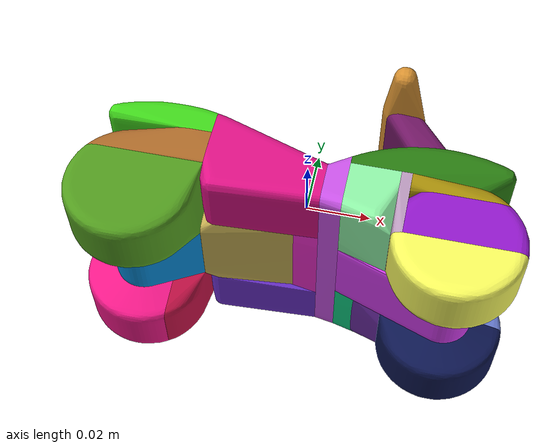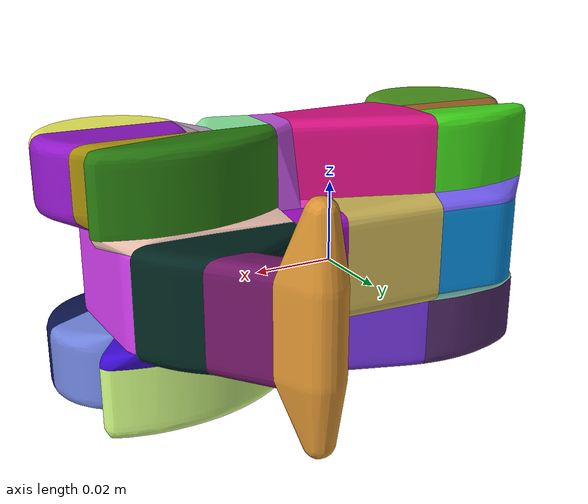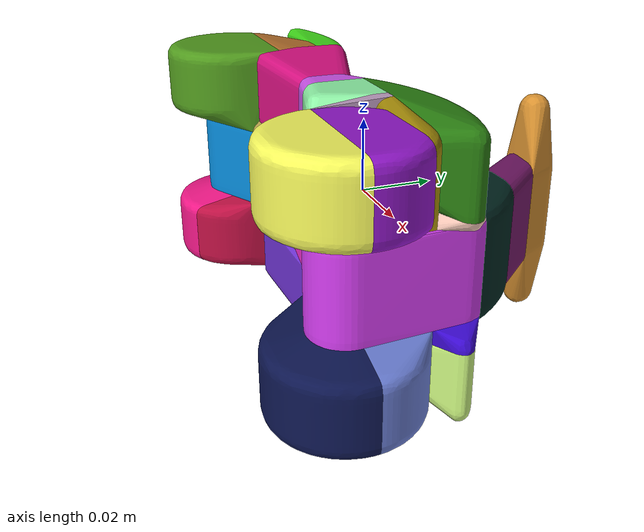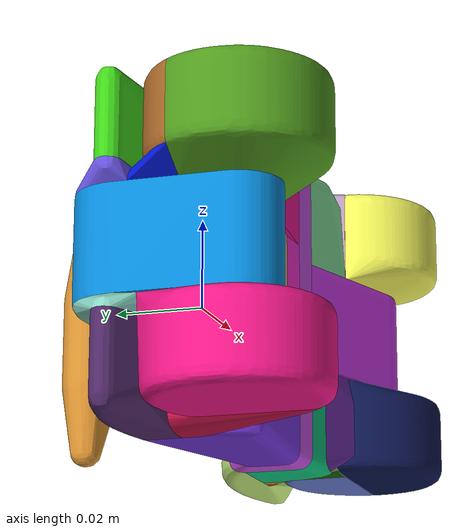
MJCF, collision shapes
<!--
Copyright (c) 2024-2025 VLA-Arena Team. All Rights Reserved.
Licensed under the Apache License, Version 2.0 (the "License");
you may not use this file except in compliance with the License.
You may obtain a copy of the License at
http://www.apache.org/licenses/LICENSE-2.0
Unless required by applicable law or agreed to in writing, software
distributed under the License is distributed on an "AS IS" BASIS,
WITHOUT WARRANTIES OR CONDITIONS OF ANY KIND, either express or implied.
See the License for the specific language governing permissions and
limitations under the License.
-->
<mujoco model="_0831111034_texture">
  <default>
    <default class="visual">
      <geom group="1" type="mesh" contype="0" conaffinity="0"/>
    </default>
    <default class="collision">
      <geom group="0" type="mesh"/>
    </default>
  </default>
  <asset>
    <texture type="2d" name="_0831111034_texture" file="_0831111034_texture.png"/>
    <material name="Material" texture="_0831111034_texture" specular="0.5" shininess="0.25"/>
    <mesh name="_0831111034_texture" file="_0831111034_texture.obj" scale="0.065 0.065 0.065"/>
    <mesh name="_0831111034_texture_collision_0" file="_0831111034_texture_collision_0.obj" scale="0.065 0.065 0.065"/>
    <mesh name="_0831111034_texture_collision_1" file="_0831111034_texture_collision_1.obj" scale="0.065 0.065 0.065"/>
    <mesh name="_0831111034_texture_collision_2" file="_0831111034_texture_collision_2.obj" scale="0.065 0.065 0.065"/>
    <mesh name="_0831111034_texture_collision_3" file="_0831111034_texture_collision_3.obj" scale="0.065 0.065 0.065"/>
    <mesh name="_0831111034_texture_collision_4" file="_0831111034_texture_collision_4.obj" scale="0.065 0.065 0.065"/>
    <mesh name="_0831111034_texture_collision_5" file="_0831111034_texture_collision_5.obj" scale="0.065 0.065 0.065"/>
    <mesh name="_0831111034_texture_collision_6" file="_0831111034_texture_collision_6.obj" scale="0.065 0.065 0.065"/>
    <mesh name="_0831111034_texture_collision_7" file="_0831111034_texture_collision_7.obj" scale="0.065 0.065 0.065"/>
    <mesh name="_0831111034_texture_collision_8" file="_0831111034_texture_collision_8.obj" scale="0.065 0.065 0.065"/>
    <mesh name="_0831111034_texture_collision_9" file="_0831111034_texture_collision_9.obj" scale="0.065 0.065 0.065"/>
    <mesh name="_0831111034_texture_collision_10" file="_0831111034_texture_collision_10.obj" scale="0.065 0.065 0.065"/>
    <mesh name="_0831111034_texture_collision_11" file="_0831111034_texture_collision_11.obj" scale="0.065 0.065 0.065"/>
    <mesh name="_0831111034_texture_collision_12" file="_0831111034_texture_collision_12.obj" scale="0.065 0.065 0.065"/>
    <mesh name="_0831111034_texture_collision_13" file="_0831111034_texture_collision_13.obj" scale="0.065 0.065 0.065"/>
    <mesh name="_0831111034_texture_collision_14" file="_0831111034_texture_collision_14.obj" scale="0.065 0.065 0.065"/>
    <mesh name="_0831111034_texture_collision_15" file="_0831111034_texture_collision_15.obj" scale="0.065 0.065 0.065"/>
    <mesh name="_0831111034_texture_collision_16" file="_0831111034_texture_collision_16.obj" scale="0.065 0.065 0.065"/>
    <mesh name="_0831111034_texture_collision_17" file="_0831111034_texture_collision_17.obj" scale="0.065 0.065 0.065"/>
    <mesh name="_0831111034_texture_collision_18" file="_0831111034_texture_collision_18.obj" scale="0.065 0.065 0.065"/>
    <mesh name="_0831111034_texture_collision_19" file="_0831111034_texture_collision_19.obj" scale="0.065 0.065 0.065"/>
    <mesh name="_0831111034_texture_collision_20" file="_0831111034_texture_collision_20.obj" scale="0.065 0.065 0.065"/>
    <mesh name="_0831111034_texture_collision_21" file="_0831111034_texture_collision_21.obj" scale="0.065 0.065 0.065"/>
    <mesh name="_0831111034_texture_collision_22" file="_0831111034_texture_collision_22.obj" scale="0.065 0.065 0.065"/>
    <mesh name="_0831111034_texture_collision_23" file="_0831111034_texture_collision_23.obj" scale="0.065 0.065 0.065"/>
    <mesh name="_0831111034_texture_collision_24" file="_0831111034_texture_collision_24.obj" scale="0.065 0.065 0.065"/>
    <mesh name="_0831111034_texture_collision_25" file="_0831111034_texture_collision_25.obj" scale="0.065 0.065 0.065"/>
    <mesh name="_0831111034_texture_collision_26" file="_0831111034_texture_collision_26.obj" scale="0.065 0.065 0.065"/>
    <mesh name="_0831111034_texture_collision_27" file="_0831111034_texture_collision_27.obj" scale="0.065 0.065 0.065"/>
    <mesh name="_0831111034_texture_collision_28" file="_0831111034_texture_collision_28.obj" scale="0.065 0.065 0.065"/>
    <mesh name="_0831111034_texture_collision_29" file="_0831111034_texture_collision_29.obj" scale="0.065 0.065 0.065"/>
    <mesh name="_0831111034_texture_collision_30" file="_0831111034_texture_collision_30.obj" scale="0.065 0.065 0.065"/>
    <mesh name="_0831111034_texture_collision_31" file="_0831111034_texture_collision_31.obj" scale="0.065 0.065 0.065"/>
    <mesh name="_0831111034_texture_collision_32" file="_0831111034_texture_collision_32.obj" scale="0.065 0.065 0.065"/>
    <mesh name="_0831111034_texture_collision_33" file="_0831111034_texture_collision_33.obj" scale="0.065 0.065 0.065"/>
    <mesh name="_0831111034_texture_collision_34" file="_0831111034_texture_collision_34.obj" scale="0.065 0.065 0.065"/>
    <mesh name="_0831111034_texture_collision_35" file="_0831111034_texture_collision_35.obj" scale="0.065 0.065 0.065"/>
  </asset>
  <worldbody>
  <body>
    <body name="object">
      <geom material="Material" mesh="_0831111034_texture" class="visual"/>
      <geom mesh="_0831111034_texture_collision_0" rgba="0.005448230565215262 0.14646690487673641 0.1226385117062111 0" class="collision"/>
      <geom mesh="_0831111034_texture_collision_1" rgba="0.44097807659950194 0.08956781738356034 0.39441845255300945 0" class="collision"/>
      <geom mesh="_0831111034_texture_collision_2" rgba="0.8444108575498586 0.5696227352817327 0.19294506589693605 0" class="collision"/>
      <geom mesh="_0831111034_texture_collision_3" rgba="0.6801474318449079 0.0526875809844104 0.8496641846966217 0" class="collision"/>
      <geom mesh="_0831111034_texture_collision_4" rgba="0.8734818571566527 0.0661196786823316 0.5239239276646197 0" class="collision"/>
      <geom mesh="_0831111034_texture_collision_5" rgba="0.0249872753614363 0.5459082017715693 0.8559069063651106 0" class="collision"/>
      <geom mesh="_0831111034_texture_collision_6" rgba="0.825518120908738 0.23377758246621083 0.9358349296523815 0" class="collision"/>
      <geom mesh="_0831111034_texture_collision_7" rgba="0.5504455246742317 0.8608333893347301 0.7863681327027902 0" class="collision"/>
      <geom mesh="_0831111034_texture_collision_8" rgba="0.23725387225346484 0.03623719344391363 0.8291958003061877 0" class="collision"/>
      <geom mesh="_0831111034_texture_collision_9" rgba="0.31380801539003866 0.16119543815550663 0.40496506438610347 0" class="collision"/>
      <geom mesh="_0831111034_texture_collision_10" rgba="0.4322569061402205 0.19742924029299402 0.8264092730614098 0" class="collision"/>
      <geom mesh="_0831111034_texture_collision_11" rgba="0.7913023057533823 0.9524359679763639 0.49573661919526923 0" class="collision"/>
      <geom mesh="_0831111034_texture_collision_12" rgba="0.7952060176825586 0.32753261707048886 0.912391603475986 0" class="collision"/>
      <geom mesh="_0831111034_texture_collision_13" rgba="0.9439772730330692 0.08927279553704548 0.5303997574694029 0" class="collision"/>
      <geom mesh="_0831111034_texture_collision_14" rgba="0.7919102578235427 0.6995456404304007 0.33057614001966684 0" class="collision"/>
      <geom mesh="_0831111034_texture_collision_15" rgba="0.4518227290499923 0.3663118408922632 0.9687588220253556 0" class="collision"/>
      <geom mesh="_0831111034_texture_collision_16" rgba="0.39837642916504123 0.16002388620212815 0.608349177382865 0" class="collision"/>
      <geom mesh="_0831111034_texture_collision_17" rgba="0.954304789804811 0.7755885311161267 0.7134336980008065 0" class="collision"/>
      <geom mesh="_0831111034_texture_collision_18" rgba="0.7257235129144569 0.5998725572037172 0.7363389085975823 0" class="collision"/>
      <geom mesh="_0831111034_texture_collision_19" rgba="0.25443175754432645 0.8494411653239917 0.10589457374038547 0" class="collision"/>
      <geom mesh="_0831111034_texture_collision_20" rgba="0.4243847789128232 0.5056108963839929 0.849064276709654 0" class="collision"/>
      <geom mesh="_0831111034_texture_collision_21" rgba="0.7443837500032648 0.06001596970386147 0.263176613864196 0" class="collision"/>
      <geom mesh="_0831111034_texture_collision_22" rgba="0.048835425862821746 0.08473078639458365 0.3109612105201397 0" class="collision"/>
      <geom mesh="_0831111034_texture_collision_23" rgba="0.3198360708373543 0.6089924500130938 0.1189177722505631 0" class="collision"/>
      <geom mesh="_0831111034_texture_collision_24" rgba="0.9660425453560534 0.9760370270821133 0.36293624994862894 0" class="collision"/>
      <geom mesh="_0831111034_texture_collision_25" rgba="0.16106655062924768 0.4830220665915559 0.06577516760441694 0" class="collision"/>
      <geom mesh="_0831111034_texture_collision_26" rgba="0.555842541267675 0.9484697706755982 0.6488328644010509 0" class="collision"/>
      <geom mesh="_0831111034_texture_collision_27" rgba="0.6501875583180328 0.5509366526591795 0.03435242472483624 0" class="collision"/>
      <geom mesh="_0831111034_texture_collision_28" rgba="0.9631665612300192 0.18002131064466187 0.8220244443105261 0" class="collision"/>
      <geom mesh="_0831111034_texture_collision_29" rgba="0.009294444554486136 0.09770774013943528 0.8966409432589136 0" class="collision"/>
      <geom mesh="_0831111034_texture_collision_30" rgba="0.6752832838892251 0.4140924860348226 0.16233259444672077 0" class="collision"/>
      <geom mesh="_0831111034_texture_collision_31" rgba="0.07171236641554035 0.3865253416068506 0.026675580168719737 0" class="collision"/>
      <geom mesh="_0831111034_texture_collision_32" rgba="0.05817835949955896 0.8090939056531782 0.5140367365648986 0" class="collision"/>
      <geom mesh="_0831111034_texture_collision_33" rgba="0.5713018882679343 0.08949217526325115 0.7921927929562103 0" class="collision"/>
      <geom mesh="_0831111034_texture_collision_34" rgba="0.8940085024340235 0.20252060129539085 0.22850605764403087 0" class="collision"/>
      <geom mesh="_0831111034_texture_collision_35" rgba="0.6800314972757376 0.6307085882877469 0.1879362766721775 0" class="collision"/>
    </body>
  <site rgba="0 0 0 0" size="0.005" pos="0 0 -0.04" name="bottom_site" />
        <site rgba="0 0 0 0" size="0.005" pos="0 0 0.04" name="top_site" />
        <site rgba="0 0 0 0" size="0.005" pos="0.025 0.025 0" name="horizontal_radius_site" />
  </body>
  </worldbody>
</mujoco>
